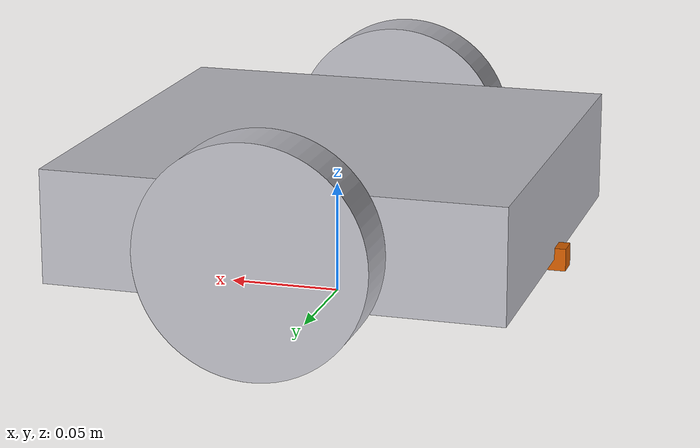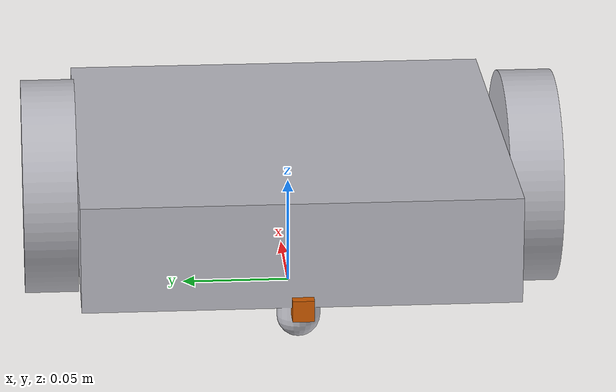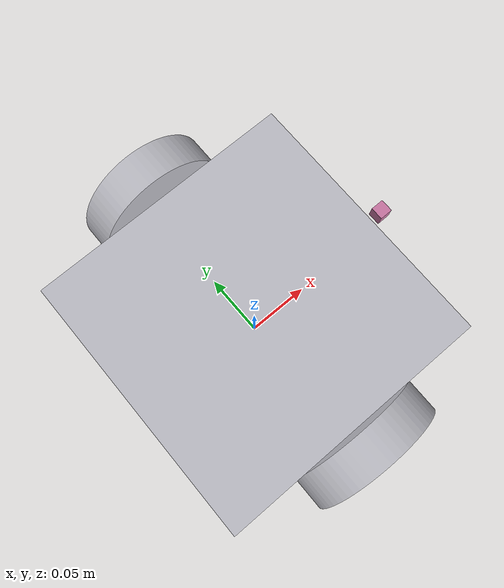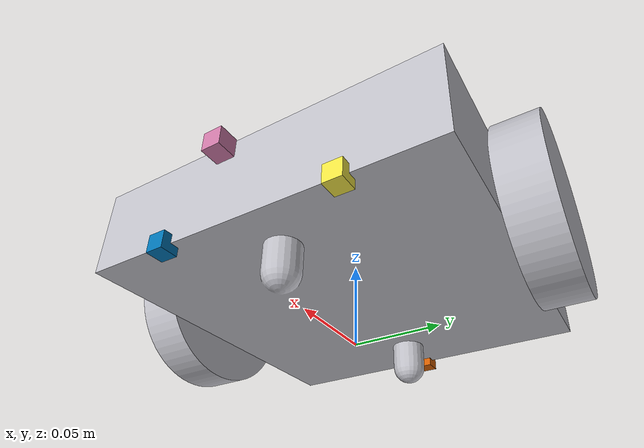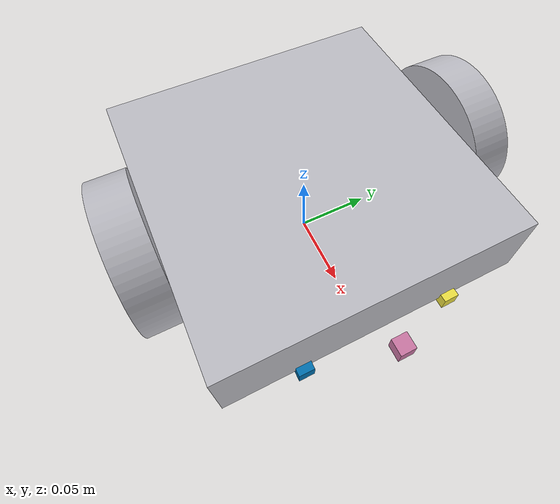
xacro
<?xml version="1.0" ?>
<robot name="two-wheeled-robot" xmlns:xacro="http://www.ros.org/wiki/xacro">

<xacro:include filename="$(find two-wheeled-robot_description)/urdf/materials.xacro" />
<xacro:include filename="$(find two-wheeled-robot_description)/urdf/two-wheeled-robot.trans" />
<xacro:include filename="$(find two-wheeled-robot_description)/urdf/two-wheeled-robot.gazebo" />
<link name="base_link">
  <inertial>
    <origin xyz="8.166246229178452e-15 0.0 0.049756872488880555" rpy="0 0 0"/>
    <mass value="2.1344303822554895"/>
    <inertia ixx="0.007528" iyy="0.007599" izz="0.014205" ixy="0.0" iyz="-0.0" ixz="0.0"/>
  </inertial>
  <visual>
    <origin xyz="0 0 0" rpy="0 0 0"/>
    <geometry>
      <mesh filename="package://two-wheeled-robot_description/meshes/base_link.stl" scale="0.001 0.001 0.001"/>
    </geometry>
    <material name="silver"/>
  </visual>
  <collision>
    <origin xyz="0 0 0" rpy="0 0 0"/>
    <geometry>
      <mesh filename="package://two-wheeled-robot_description/meshes/base_link.stl" scale="0.001 0.001 0.001"/>
    </geometry>
  </collision>
</link>

<link name="right_wheel_1">
  <inertial>
    <origin xyz="-5.790023100122029e-18 -0.012499999999999997 0.0" rpy="0 0 0"/>
    <mass value="0.1826050729899067"/>
    <inertia ixx="0.000124" iyy="0.000228" izz="0.000124" ixy="-0.0" iyz="0.0" ixz="0.0"/>
  </inertial>
  <visual>
    <origin xyz="-0.0 0.1 -0.05" rpy="0 0 0"/>
    <geometry>
      <mesh filename="package://two-wheeled-robot_description/meshes/right_wheel_1.stl" scale="0.001 0.001 0.001"/>
    </geometry>
    <material name="silver"/>
  </visual>
  <collision>
    <origin xyz="-0.0 0.1 -0.05" rpy="0 0 0"/>
    <geometry>
      <mesh filename="package://two-wheeled-robot_description/meshes/right_wheel_1.stl" scale="0.001 0.001 0.001"/>
    </geometry>
  </collision>
</link>

<link name="left_wheel_1">
  <inertial>
    <origin xyz="-5.790023100122029e-18 0.012499999999999997 0.0" rpy="0 0 0"/>
    <mass value="0.1826050729899067"/>
    <inertia ixx="0.000124" iyy="0.000228" izz="0.000124" ixy="0.0" iyz="-0.0" ixz="0.0"/>
  </inertial>
  <visual>
    <origin xyz="-0.0 -0.1 -0.05" rpy="0 0 0"/>
    <geometry>
      <mesh filename="package://two-wheeled-robot_description/meshes/left_wheel_1.stl" scale="0.001 0.001 0.001"/>
    </geometry>
    <material name="silver"/>
  </visual>
  <collision>
    <origin xyz="-0.0 -0.1 -0.05" rpy="0 0 0"/>
    <geometry>
      <mesh filename="package://two-wheeled-robot_description/meshes/left_wheel_1.stl" scale="0.001 0.001 0.001"/>
    </geometry>
  </collision>
</link>

<joint name="Rev1" type="continuous">
  <origin xyz="0.0 -0.1 0.05" rpy="0 0 0"/>
  <parent link="base_link"/>
  <child link="right_wheel_1"/>
  <axis xyz="0.0 1.0 0.0"/>
</joint>

<joint name="Rev2" type="continuous">
  <origin xyz="0.0 0.1 0.05" rpy="0 0 0"/>
  <parent link="base_link"/>
  <child link="left_wheel_1"/>
  <axis xyz="0.0 1.0 0.0"/>
</joint>

  <!-- Camera -->

<!-- front cam 1  -->
 <joint name="front_camera_1_joint" type="fixed">
    <axis xyz="0 1 0" />
    <origin xyz="0.1 0.05 0.025" rpy="0 0 0"/>
    <parent link="base_link"/>
    <child link="front_camera_1_link"/>
  </joint>

<xacro:property name="cam_color" value="Gazebo/Red" />
<link name="front_camera_1_link">
  <collision>
    <origin xyz="0 0 0" rpy="0 0 0"/>
    <geometry>
  <box size="0.01 0.01 0.01"/>
    </geometry>
  </collision>

  <visual>
    <origin xyz="0 0 0" rpy="0 0 0"/>
    <geometry>
  <box size="0.01 0.01 0.01"/>
    </geometry>
    <material>${cam_color}</material>
  </visual>

  <inertial>
    <mass value="1e-5" />
    <origin xyz="0 0 0" rpy="0 0 0"/>
    <inertia ixx="1e-6" ixy="0" ixz="0" iyy="1e-6" iyz="0" izz="1e-6" />
  </inertial>
</link>

<!-- front cam 2  -->
 <joint name="front_camera_2_joint" type="fixed">
    <axis xyz="0 1 0" />
    <origin xyz="0.1 -0.05 0.025" rpy="0 0 0"/>
    <parent link="base_link"/>
    <child link="front_camera_2_link"/>
  </joint>

<xacro:property name="cam_color" value="Gazebo/Red" />
<link name="front_camera_2_link">
  <collision>
    <origin xyz="0 0 0" rpy="0 0 0"/>
    <geometry>
  <box size="0.01 0.01 0.01"/>
    </geometry>
  </collision>

  <visual>
    <origin xyz="0 0 0" rpy="0 0 0"/>
    <geometry>
  <box size="0.01 0.01 0.01"/>
    </geometry>
    <material>${cam_color}</material>
  </visual>

  <inertial>
    <mass value="1e-5" />
    <origin xyz="0 0 0" rpy="0 0 0"/>
    <inertia ixx="1e-6" ixy="0" ixz="0" iyy="1e-6" iyz="0" izz="1e-6" />
  </inertial>
</link>

<!-- back cam  -->
<joint name="back_camera_joint" type="fixed">
    <axis xyz="-1 0 0" />
    <origin xyz="-0.1 0 0.025" rpy="0 0 3.14"/>
     <pose>0 0 0 0 0 1.57</pose>
    <parent link="base_link"/>
    <child link="back_camera_link"/>
  </joint>

<link name="back_camera_link">
  <collision>
    <origin xyz="0 0 0" rpy="0 0 0"/>
    <geometry>
  <box size="0.01 0.01 0.01"/>
    </geometry>
  </collision>

  <visual>
    <origin xyz="0 0 0" rpy="0 0 0"/>
    <geometry>
  <box size="0.01 0.01 0.01"/>
    </geometry>
    <material>${cam_color}</material>
  </visual>

  <inertial>
    <mass value="1e-5" />
    <origin xyz="0 0 0" rpy="0 0 0"/>
    <inertia ixx="1e-6" ixy="0" ixz="0" iyy="1e-6" iyz="0" izz="1e-6" />
  </inertial>
</link>

<!-- laser  -->

  <joint name="hokuyo_joint" type="fixed">
    <axis xyz="0 1 0" />
    <origin xyz="0.12 0 0.05" rpy="0 0 0"/>
    <parent link="base_link"/>
    <child link="hokuyo_link"/>
  </joint>

  <link name="hokuyo_link">
    <collision>
      <origin xyz="0 0 0" rpy="0 0 0"/>
      <geometry>
    <box size="0.01 0.01 0.1"/>
      </geometry>
    </collision>

    <visual>
      <origin xyz="0 0 0" rpy="0 0 0"/>
      <geometry>
        <box size="0.01 0.01 0.01"/>
      </geometry>
    </visual>

    <inertial>
      <mass value="1e-5" />
      <origin xyz="0 0 0" rpy="0 0 0"/>
      <inertia ixx="1e-6" ixy="0" ixz="0" iyy="1e-6" iyz="0" izz="1e-6" />
    </inertial>
  </link>

  <!-- imu  -->

  <joint name="imu_joint" type="fixed">
    <origin xyz="0.12 0 0.05" rpy="0 0 0" />
    <parent link="base_link"/>
    <child link="imu_link" />
    <axis xyz="1 0 0"/>
  </joint>

  <link name="imu_link">
    <inertial>
      <mass value="0.001" />
      <origin xyz="0 0 0" rpy="0 0 0"/>
      <inertia
        ixx="1e-6" ixy="0.0" ixz="0.0"
        iyy="1e-6" iyz="0.0"
        izz="1e-6"/>
    </inertial>

    <collision>
      <origin xyz="0 0 0" rpy="0 0 0"/>
      <geometry>
        <box size="0.001 0.001 0.001"/>
      </geometry>
    </collision>

    <visual>
      <origin xyz="0 0 0" rpy="0 0 0"/>
      <geometry>
        <box size="0.001 0.001 0.001"/>
      </geometry>
    </visual>

  </link>

  <link name="robot_footprint"></link>

  <joint name="robot_footprint_joint" type="fixed">
    <origin xyz="0 0 0" rpy="0 0 0" />
    <parent link="robot_footprint"/>
    <child link="base_link" />
  </joint>

</robot>

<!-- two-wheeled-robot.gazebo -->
<robot name="two-wheeled-robot" xmlns:xacro="http://www.ros.org/wiki/xacro" >

<xacro:property name="body_color" value="Gazebo/Silver" />
<xacro:property name="body_color1" value="Gazebo/Blue" />
<xacro:property name="body_color2" value="Gazebo/Green" />

<gazebo>
  <plugin name="differential_drive_controller" filename="libgazebo_ros_diff_drive.so">
    <alwaysOn>true</alwaysOn>
    <updateRate>20</updateRate>
    <legacyMode>false</legacyMode>
    <leftJoint>Rev2</leftJoint>
    <rightJoint>Rev1</rightJoint>
    <wheelSeparation>0.2</wheelSeparation>
    <wheelDiameter>0.1</wheelDiameter>
    <torque>20</torque>
    <commandTopic>cmd_vel</commandTopic>
    <odometryTopic>odom</odometryTopic>
    <odometryFrame>odom</odometryFrame>

    <robotBaseFrame>robot_footprint</robotBaseFrame>
    <publishWheelTF>false</publishWheelTF>
    <publishWheelJointState>false</publishWheelJointState>
    <rosDebugLevel>na</rosDebugLevel>
    <wheelAcceleration>0</wheelAcceleration>
    <wheelTorque>5</wheelTorque>
    <odometrySource>world</odometrySource>
    <publishTf>1</publishTf>
    <publishOdomTF>true</publishOdomTF>
 </plugin>
</gazebo>

<gazebo reference="base_link">
  <material>${body_color1}</material>
  <mu1>0.2</mu1>
  <mu2>0.2</mu2>
  <selfCollide>true</selfCollide>
  <gravity>true</gravity>
</gazebo>

<gazebo reference="right_wheel_1">
  <material>${body_color2}</material>
  <mu1>2</mu1>
  <mu2>2</mu2>
  <selfCollide>true</selfCollide>
  <gravity>true</gravity>
</gazebo>

<gazebo reference="left_wheel_1">
  <material>${body_color2}</material>
  <mu1>2</mu1>
  <mu2>2</mu2>
  <selfCollide>true</selfCollide>
  <gravity>true</gravity>
</gazebo>

  <!-- camera -->

  <!-- front cam 1  -->
  <gazebo reference="front_camera_1_link">
    <sensor type="camera" name="front_camera_1">
      <update_rate>30.0</update_rate>
      <camera name="front_camera_1">
        <horizontal_fov>1.3962634</horizontal_fov>
        <image>
          <width>800</width>
          <height>800</height>
          <format>R8G8B8</format>
        </image>
        <clip>
          <near>0.02</near>
          <far>300</far>
        </clip>
        <noise>
          <type>gaussian</type>
          <!-- Noise is sampled independently per pixel on each frame.
               That pixel's noise value is added to each of its color
               channels, which at that point lie in the range [0,1]. -->
          <mean>0.0</mean>
          <stddev>0.007</stddev>
        </noise>
      </camera>
      <plugin name="camera_controller" filename="libgazebo_ros_camera.so">
        <alwaysOn>true</alwaysOn>
        <updateRate>0.0</updateRate>
        <cameraName>twr/front_camera_1</cameraName>
        <imageTopicName>image_raw</imageTopicName>
        <cameraInfoTopicName>camera_info</cameraInfoTopicName>
        <frameName>camera_link</frameName>
        <hackBaseline>0.07</hackBaseline>
        <distortionK1>0.0</distortionK1>
        <distortionK2>0.0</distortionK2>
        <distortionK3>0.0</distortionK3>
        <distortionT1>0.0</distortionT1>
        <distortionT2>0.0</distortionT2>
      </plugin>
    </sensor>
  </gazebo>

   <!-- front cam 2  -->
  <gazebo reference="front_camera_2_link">
    <sensor type="camera" name="front_camera_2">
      <update_rate>30.0</update_rate>
      <camera name="front_camera_2">
        <horizontal_fov>1.3962634</horizontal_fov>
        <image>
          <width>800</width>
          <height>800</height>
          <format>R8G8B8</format>
        </image>
        <clip>
          <near>0.02</near>
          <far>300</far>
        </clip>
        <noise>
          <type>gaussian</type>
          <!-- Noise is sampled independently per pixel on each frame.
               That pixel's noise value is added to each of its color
               channels, which at that point lie in the range [0,1]. -->
          <mean>0.0</mean>
          <stddev>0.007</stddev>
        </noise>
      </camera>
      <plugin name="camera_controller" filename="libgazebo_ros_camera.so">
        <alwaysOn>true</alwaysOn>
        <updateRate>0.0</updateRate>
        <cameraName>twr/front_camera_2</cameraName>
        <imageTopicName>image_raw</imageTopicName>
        <cameraInfoTopicName>camera_info</cameraInfoTopicName>
        <frameName>camera_link</frameName>
        <hackBaseline>0.07</hackBaseline>
        <distortionK1>0.0</distortionK1>
        <distortionK2>0.0</distortionK2>
        <distortionK3>0.0</distortionK3>
        <distortionT1>0.0</distortionT1>
        <distortionT2>0.0</distortionT2>
      </plugin>
    </sensor>
  </gazebo>

  <!-- back cam  -->
  <gazebo reference="back_camera_link">
    <sensor type="camera" name="back_camera">
      <update_rate>30.0</update_rate>
      <camera name="back_camera">
        <horizontal_fov>1.3962634</horizontal_fov>
        <image>
          <width>800</width>
          <height>800</height>
          <format>R8G8B8</format>
        </image>
        <clip>
          <near>0.02</near>
          <far>300</far>
        </clip>
        <noise>
          <type>gaussian</type>
          <!-- Noise is sampled independently per pixel on each frame.
               That pixel's noise value is added to each of its color
               channels, which at that point lie in the range [0,1]. -->
          <mean>0.0</mean>
          <stddev>0.007</stddev>
        </noise>
      </camera>
      <plugin name="camera_controller" filename="libgazebo_ros_camera.so">
        <alwaysOn>true</alwaysOn>
        <updateRate>0.0</updateRate>
        <cameraName>twr/back_camera</cameraName>
        <imageTopicName>image_raw</imageTopicName>
        <cameraInfoTopicName>camera_info</cameraInfoTopicName>
        <frameName>camera_link</frameName>
        <hackBaseline>0.07</hackBaseline>
        <distortionK1>0.0</distortionK1>
        <distortionK2>0.0</distortionK2>
        <distortionK3>0.0</distortionK3>
        <distortionT1>0.0</distortionT1>
        <distortionT2>0.0</distortionT2>
      </plugin>
    </sensor>
  </gazebo>

  <!-- laser  -->

  <gazebo reference="hokuyo_link">
    <sensor type="ray" name="head_hokuyo_sensor">
      <pose>0 0 0 0 0 0</pose>
      <visualize>false</visualize>
      <update_rate>40</update_rate>
      <ray>
        <scan>
          <horizontal>
            <samples>720</samples>
            <resolution>1</resolution>
            <min_angle>-1.570796</min_angle>
            <max_angle>1.570796</max_angle>
          </horizontal>
        </scan>
        <range>
          <min>0.10</min>
          <max>30.0</max>
          <resolution>0.01</resolution>
        </range>
        <noise>
          <type>gaussian</type>
          <mean>0.0</mean>
          <stddev>0.01</stddev>
        </noise>
      </ray>
      <plugin name="gazebo_ros_head_hokuyo_controller" filename="libgazebo_ros_laser.so">
        <topicName>/twr/laser/scan</topicName>
        <frameName>hokuyo_link</frameName>
      </plugin>
    </sensor>
  </gazebo>

  <!-- imu  -->
  <gazebo reference="imu_link">
    <gravity>true</gravity>
    <sensor name="imu_sensor" type="imu">
      <always_on>true</always_on>
      <update_rate>100</update_rate>
      <visualize>true</visualize>
      <topic>/twr/imu</topic>
      <plugin filename="libgazebo_ros_imu_sensor.so" name="imu_plugin">
        <topicName>imu</topicName>
        <bodyName>imu_link</bodyName>
        <updateRateHZ>10.0</updateRateHZ>
        <gaussianNoise>0.0</gaussianNoise>
        <xyzOffset>0 0 0</xyzOffset>
        <rpyOffset>0 0 0</rpyOffset>
        <frameName>imu_link</frameName>
        <initialOrientationAsReference>false</initialOrientationAsReference>
      </plugin>
      <pose>0 0 0 0 0 0</pose>
    </sensor>
  </gazebo>

</robot>
